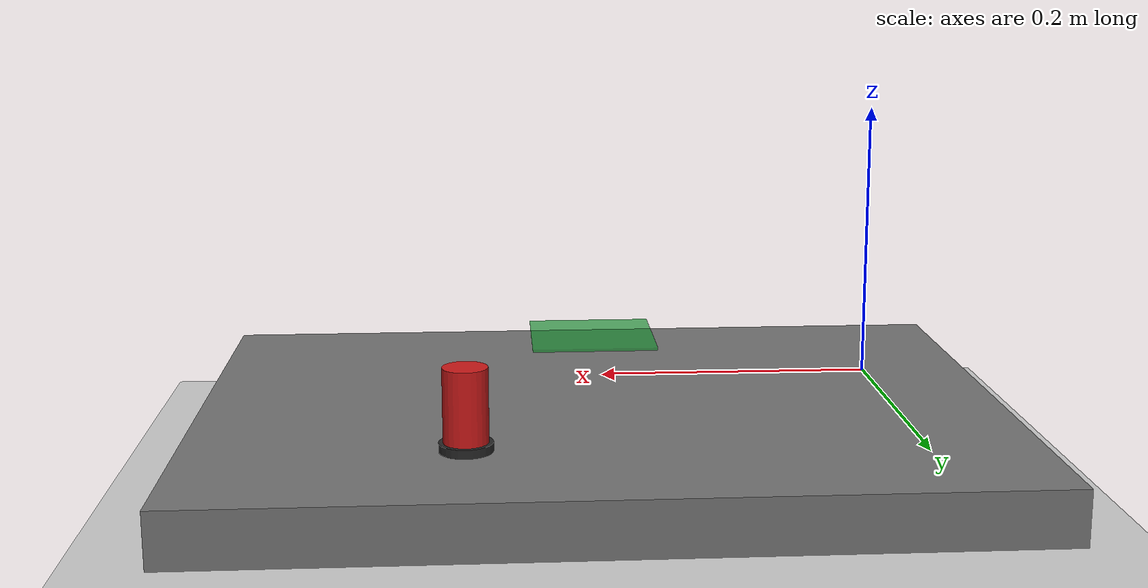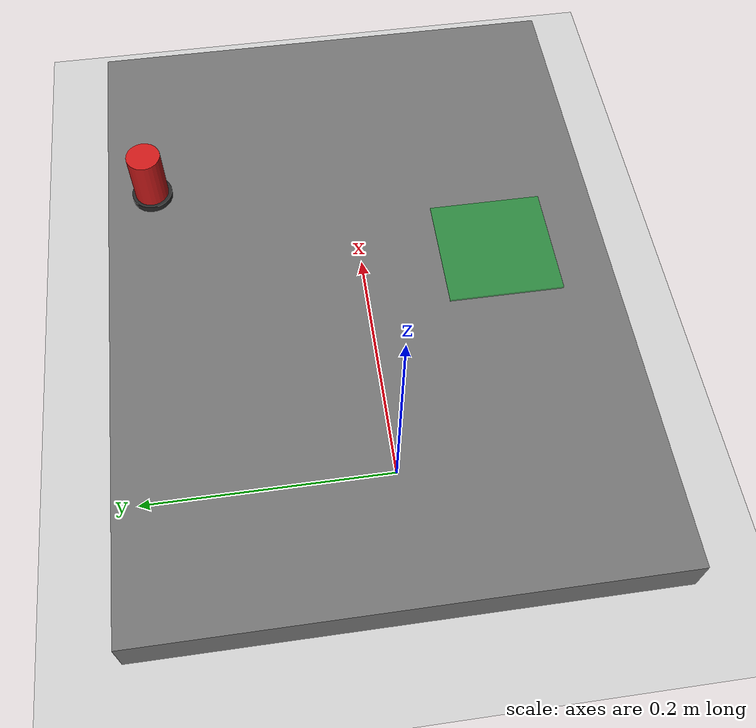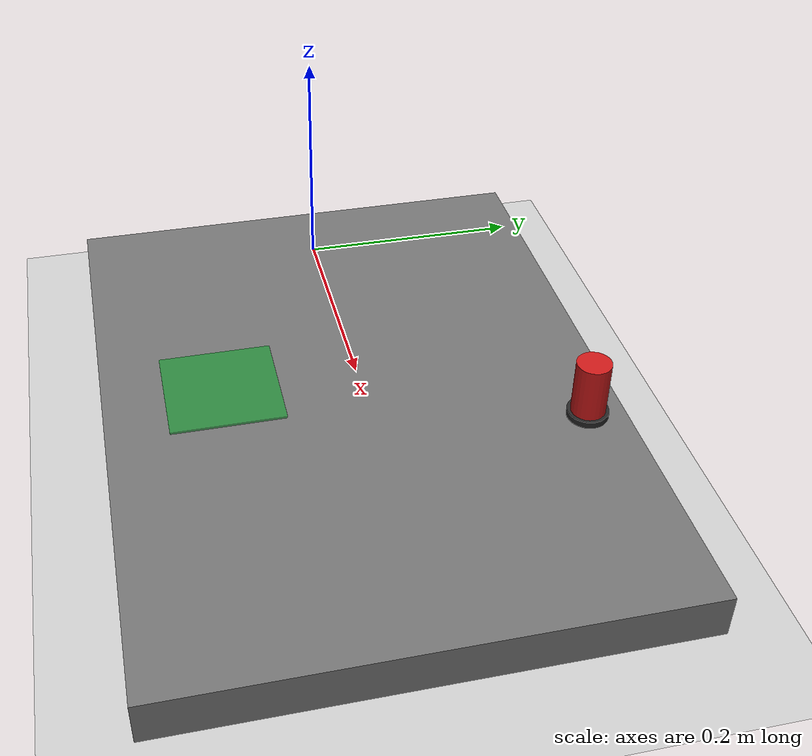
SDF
<?xml version="1.0" ?>
<sdf version="1.6">
  <world name="fixed_pick_world">
    <physics name="contact_physics" type="ode">
      <max_step_size>0.001</max_step_size>
      <real_time_update_rate>1000</real_time_update_rate>
      <ode>
        <solver><type>quick</type><iters>100</iters><sor>1.3</sor></solver>
        <constraints><cfm>0.0</cfm><erp>0.2</erp><contact_max_correcting_vel>0.1</contact_max_correcting_vel><contact_surface_layer>0.001</contact_surface_layer></constraints>
      </ode>
    </physics>
    <plugin name="gazebo_ros_state" filename="libgazebo_ros_state.so">
      <ros>
        <namespace>/gazebo</namespace>
      </ros>
      <update_rate>30.0</update_rate>
    </plugin>
    <plugin name="gazebo_ros_properties" filename="libgazebo_ros_properties.so">
      <ros>
        <namespace>/gazebo</namespace>
      </ros>
    </plugin>
    <include>
      <uri>model://sun</uri>
    </include>
    <include>
      <uri>model://ground_plane</uri>
      <!-- The work table top is at z=-0.02.  Keep the stock Gazebo ground
           below it so a released cylinder falls onto the table rather than
           colliding with a second plane at z=0. -->
      <pose>0 0 -0.08 0 0 0</pose>
    </include>

    <model name="work_table">
      <static>true</static>
      <pose>0.20 0.00 -0.04 0 0 0</pose>
      <link name="table_link">
        <visual name="table_visual">
          <geometry>
            <box>
              <size>0.60 0.45 0.04</size>
            </box>
          </geometry>
          <material>
            <ambient>0.45 0.45 0.45 1</ambient>
            <diffuse>0.45 0.45 0.45 1</diffuse>
          </material>
        </visual>
        <collision name="table_collision">
          <geometry>
            <box>
              <size>0.60 0.45 0.04</size>
            </box>
          </geometry>
        </collision>
      </link>
    </model>

    <model name="pick_support">
      <static>true</static>
      <pose>0.30 0.18 0.003 0 0 0</pose>
      <link name="support_link">
        <visual name="support_visual">
          <geometry><cylinder><radius>0.018</radius><length>0.006</length></cylinder></geometry>
          <material><ambient>0.15 0.15 0.15 1</ambient><diffuse>0.15 0.15 0.15 1</diffuse></material>
        </visual>
        <collision name="support_collision">
          <geometry><cylinder><radius>0.018</radius><length>0.006</length></cylinder></geometry>
        </collision>
      </link>
    </model>

    <model name="target_object">
      <static>false</static>
      <pose>0.30 0.18 0.031 0 0 0</pose>
      <link name="target_link">
        <kinematic>false</kinematic>
        <gravity>false</gravity>
        <inertial>
          <mass>0.01</mass>
          <inertia>
            <ixx>0.00002</ixx>
            <iyy>0.00002</iyy>
            <izz>0.00002</izz>
          </inertia>
        </inertial>
        <visual name="target_visual">
          <geometry>
            <cylinder>
              <radius>0.015</radius>
              <length>0.05</length>
            </cylinder>
          </geometry>
          <material>
            <ambient>0.8 0.1 0.1 1</ambient>
            <diffuse>0.8 0.1 0.1 1</diffuse>
          </material>
        </visual>
        <collision name="target_collision">
          <geometry>
            <cylinder>
              <radius>0.015</radius>
              <length>0.05</length>
            </cylinder>
          </geometry>
          <surface>
            <friction><ode><mu>20.0</mu><mu2>20.0</mu2></ode></friction>
            <contact><ode><kp>1000000</kp><kd>10</kd><max_vel>0.05</max_vel><min_depth>0.0005</min_depth></ode></contact>
          </surface>
        </collision>
      </link>
    </model>

    <model name="place_area">
      <static>true</static>
      <pose>0.20 -0.12 0.001 0 0 0</pose>
      <link name="place_area_link">
        <visual name="place_area_visual">
          <geometry>
            <box>
              <size>0.10 0.10 0.002</size>
            </box>
          </geometry>
          <material>
            <ambient>0.1 0.6 0.2 0.7</ambient>
            <diffuse>0.1 0.6 0.2 0.7</diffuse>
          </material>
        </visual>
      </link>
    </model>
  </world>
</sdf>
